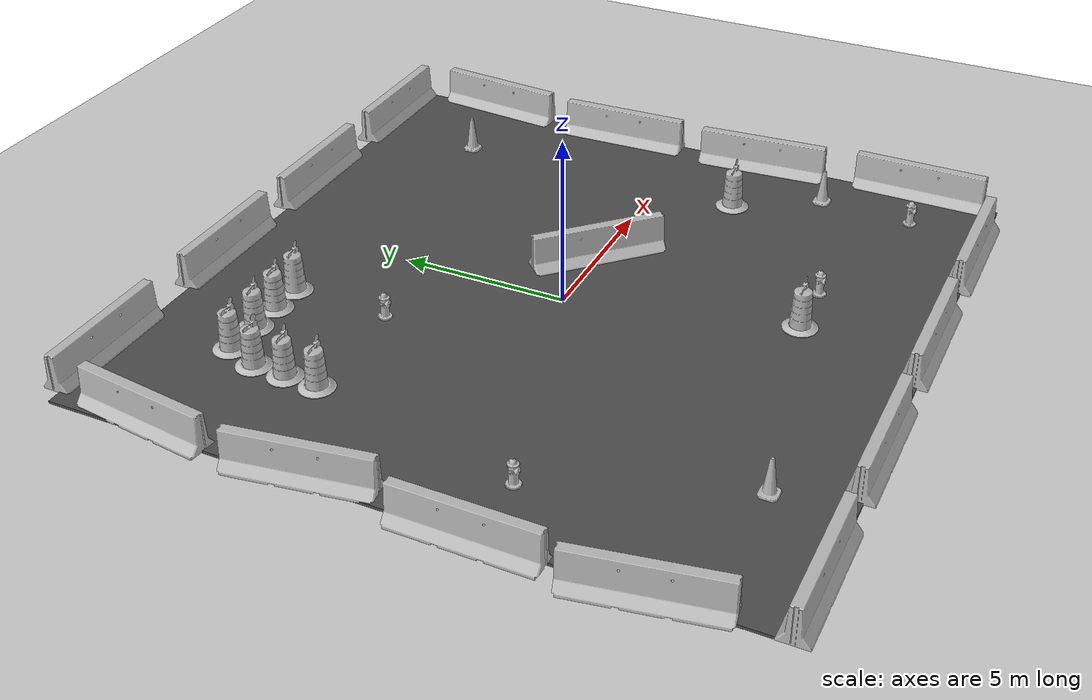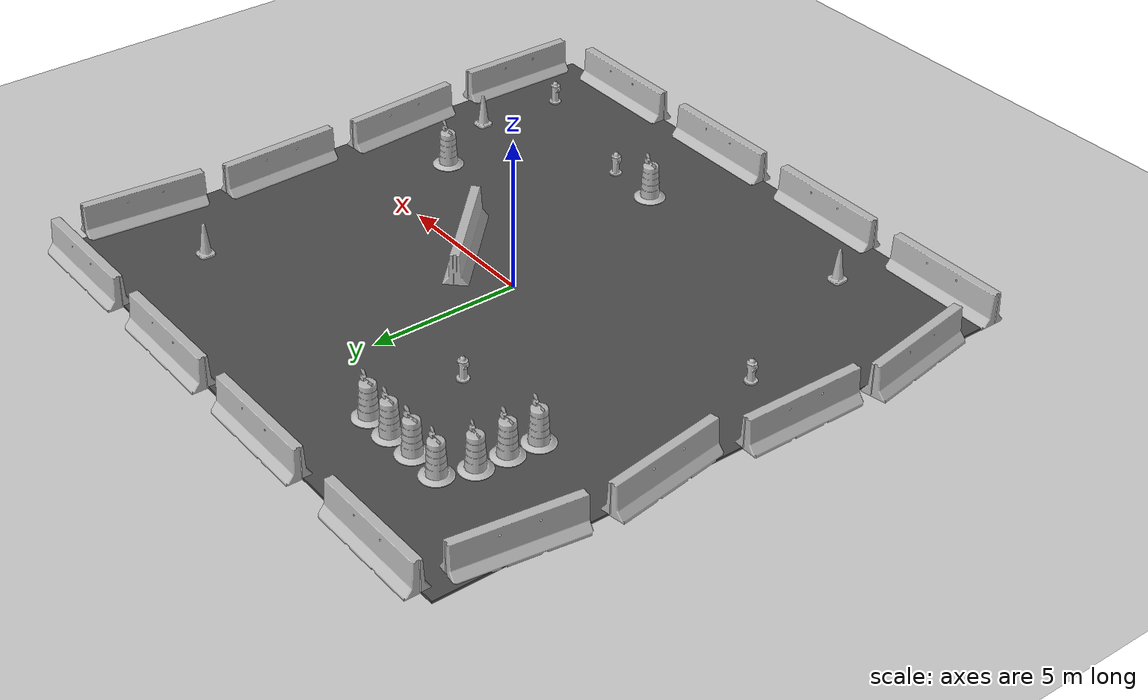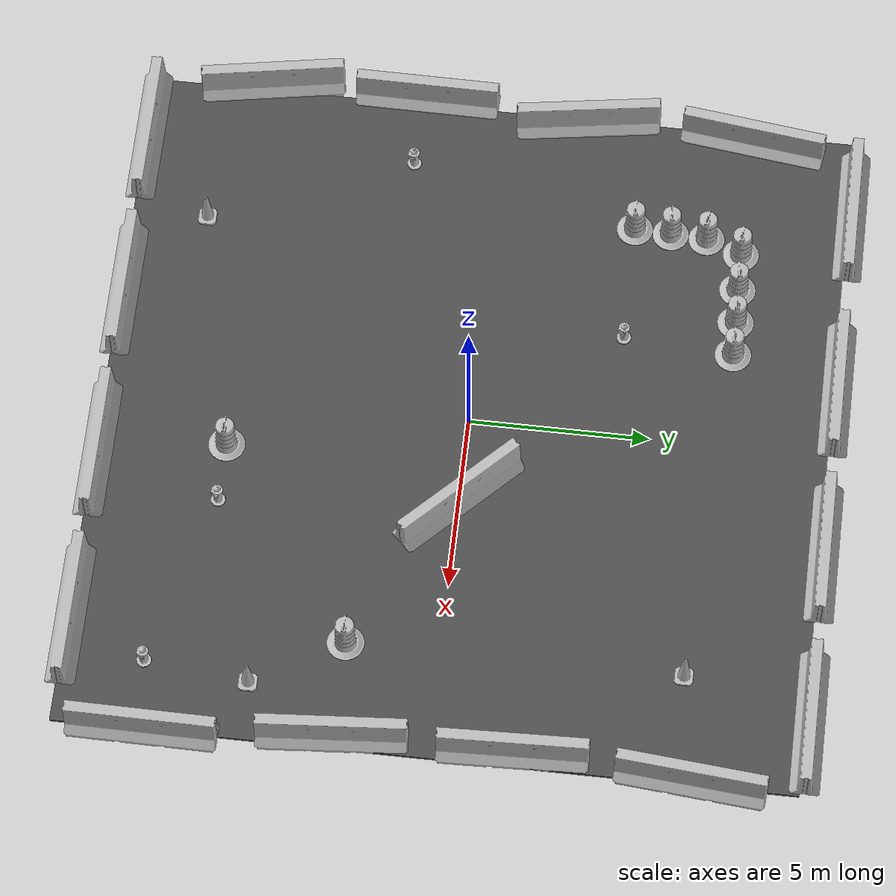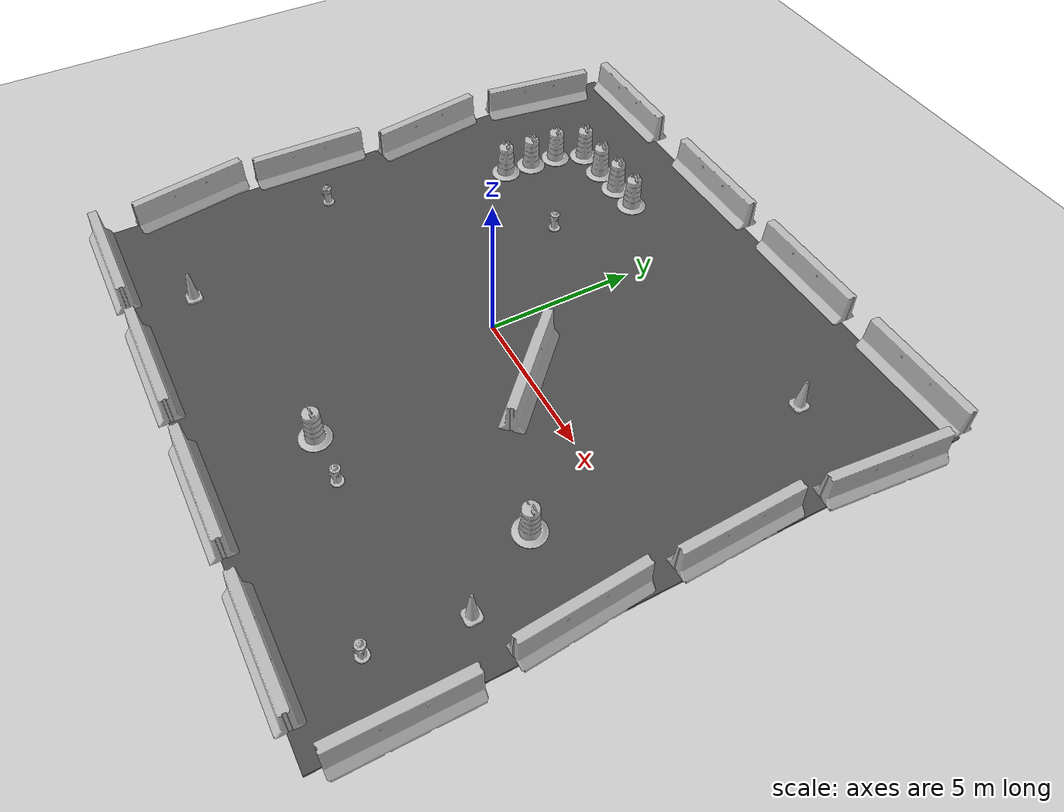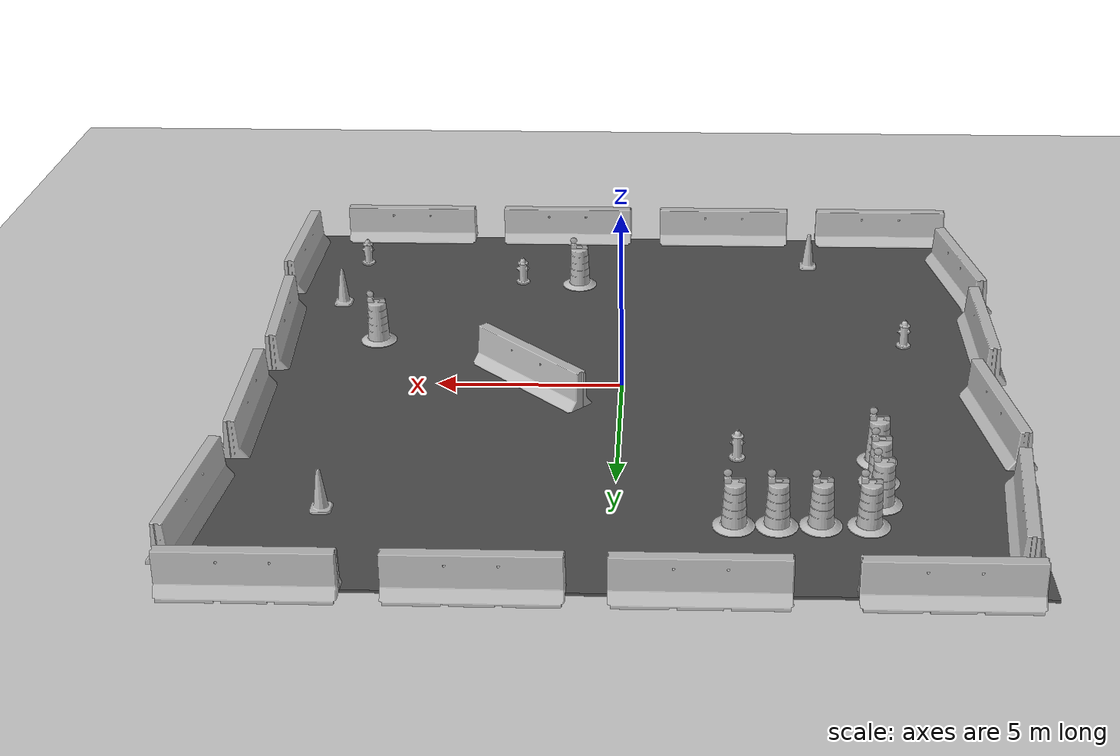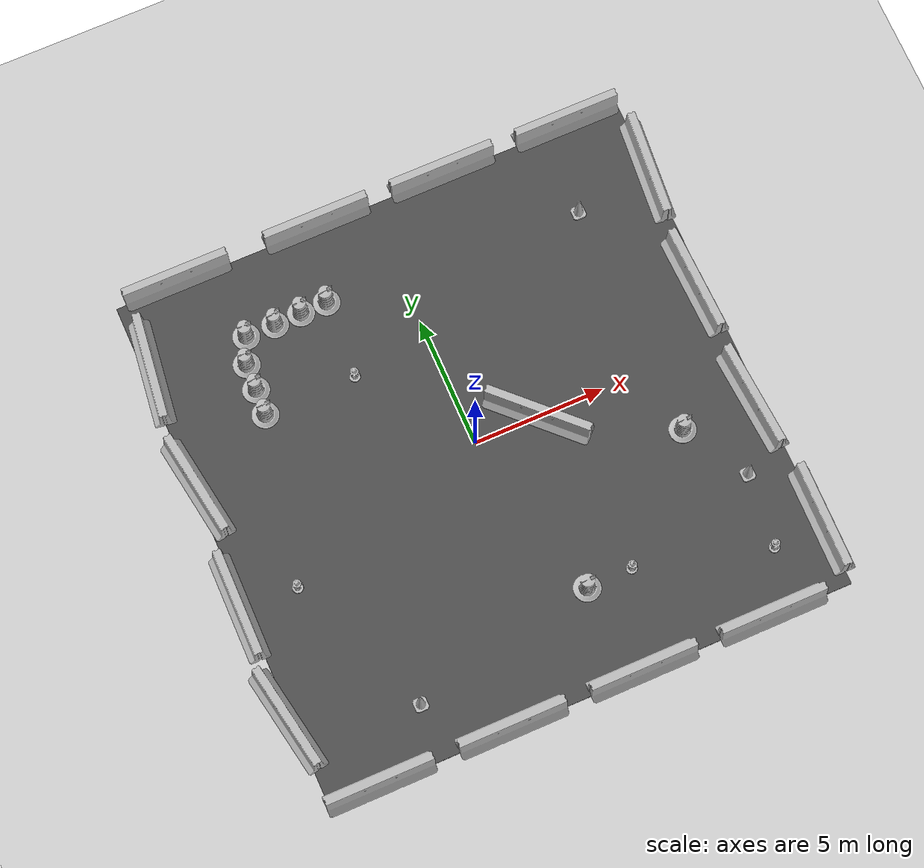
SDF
<sdf version="1.6">
 <world name="default">
  <light name="sun" type="directional">
   <pose>0 0 10 0 -0 0</pose>
   <diffuse>0.8 0.8 0.8 1</diffuse>
   <specular>0.2 0.2 0.2 1</specular>
   <attenuation>
    <range>1000</range>
    <constant>0.9</constant>
    <linear>0.01</linear>
    <quadratic>0.001</quadratic>
   </attenuation>
   <direction>-0.5 0.1 -0.9</direction>
  </light>
  <model name="ground_plane">
   <static>1</static>
   <link name="link">
    <collision name="collision">
     <geometry><plane><normal>0 0 1</normal><size>100 100</size></plane></geometry>
     <surface><friction><ode><mu>100</mu><mu2>50</mu2></ode></friction></surface>
    </collision>
    <visual name="visual">
     <cast_shadows>0</cast_shadows>
     <geometry><plane><normal>0 0 1</normal><size>100 100</size></plane></geometry>
     <material>
      <script><uri>file://media/materials/scripts/gazebo.material</uri><name>Gazebo/Grey</name></script>
     </material>
    </visual>
    <velocity_decay><linear>0</linear><angular>0</angular></velocity_decay>
   </link>
  </model>
  <physics name="default_physics" default="0" type="ode">
   <max_step_size>0.004</max_step_size>
   <real_time_factor>1</real_time_factor>
   <real_time_update_rate>250</real_time_update_rate>
  </physics>
  <scene><ambient>0.4 0.4 0.4 1</ambient><background>0.7 0.7 0.7 1</background><shadows>1</shadows></scene>
  <model name="jersey_barrier">
   <static>1</static>
   <link name="link">
    <visual name="visual">
     <geometry><mesh><uri>model://jersey_barrier/meshes/jersey_barrier.dae</uri></mesh></geometry>
    </visual>
    <collision name="upright">
     <pose>0 0 0.5715 0 -0 0</pose>
     <geometry><box><size>4.06542 0.3063 1.143</size></box></geometry>
    </collision>
    <collision name="base">
     <pose>0 0 0.032258 0 -0 0</pose>
     <geometry><box><size>4.06542 0.8107 0.064516</size></box></geometry>
    </collision>
    <collision name="base2">
     <pose>0 0 0.1 0 -0 0</pose>
     <geometry><box><size>4.06542 0.65 0.1</size></box></geometry>
    </collision>
    <collision name="base3">
     <pose>0 0 0.2 0 -0 0</pose>
     <geometry><box><size>4.06542 0.5 0.1</size></box></geometry>
    </collision>
    <collision name="left-angle">
     <pose>0 -0.224 0.2401 0.9 -0 0</pose>
     <geometry><box><size>4.06542 0.5 0.064516</size></box></geometry>
    </collision>
    <collision name="right-angle">
     <pose>0 0.224 0.2401 -0.9 0 0</pose>
     <geometry><box><size>4.06542 0.5 0.064516</size></box></geometry>
    </collision>
    <velocity_decay><linear>0</linear><angular>0</angular></velocity_decay>
   </link>
   <pose>-8 -10 0 0 -0 0</pose>
  </model>
  <model name="jersey_barrier_0">
   <static>1</static>
   <link name="link">
    <visual name="visual">
     <geometry><mesh><uri>model://jersey_barrier/meshes/jersey_barrier.dae</uri></mesh></geometry>
    </visual>
    <collision name="upright">
     <pose>0 0 0.5715 0 -0 0</pose>
     <geometry><box><size>4.06542 0.3063 1.143</size></box></geometry>
    </collision>
    <collision name="base">
     <pose>0 0 0.032258 0 -0 0</pose>
     <geometry><box><size>4.06542 0.8107 0.064516</size></box></geometry>
    </collision>
    <collision name="base2">
     <pose>0 0 0.1 0 -0 0</pose>
     <geometry><box><size>4.06542 0.65 0.1</size></box></geometry>
    </collision>
    <collision name="base3">
     <pose>0 0 0.2 0 -0 0</pose>
     <geometry><box><size>4.06542 0.5 0.1</size></box></geometry>
    </collision>
    <collision name="left-angle">
     <pose>0 -0.224 0.2401 0.9 -0 0</pose>
     <geometry><box><size>4.06542 0.5 0.064516</size></box></geometry>
    </collision>
    <collision name="right-angle">
     <pose>0 0.224 0.2401 -0.9 0 0</pose>
     <geometry><box><size>4.06542 0.5 0.064516</size></box></geometry>
    </collision>
    <velocity_decay><linear>0</linear><angular>0</angular></velocity_decay>
   </link>
   <pose>-3 -10 0 0 -0 0</pose>
  </model>
  <model name="jersey_barrier_1">
   <static>1</static>
   <link name="link">
    <visual name="visual">
     <geometry><mesh><uri>model://jersey_barrier/meshes/jersey_barrier.dae</uri></mesh></geometry>
    </visual>
    <collision name="upright">
     <pose>0 0 0.5715 0 -0 0</pose>
     <geometry><box><size>4.06542 0.3063 1.143</size></box></geometry>
    </collision>
    <collision name="base">
     <pose>0 0 0.032258 0 -0 0</pose>
     <geometry><box><size>4.06542 0.8107 0.064516</size></box></geometry>
    </collision>
    <collision name="base2">
     <pose>0 0 0.1 0 -0 0</pose>
     <geometry><box><size>4.06542 0.65 0.1</size></box></geometry>
    </collision>
    <collision name="base3">
     <pose>0 0 0.2 0 -0 0</pose>
     <geometry><box><size>4.06542 0.5 0.1</size></box></geometry>
    </collision>
    <collision name="left-angle">
     <pose>0 -0.224 0.2401 0.9 -0 0</pose>
     <geometry><box><size>4.06542 0.5 0.064516</size></box></geometry>
    </collision>
    <collision name="right-angle">
     <pose>0 0.224 0.2401 -0.9 0 0</pose>
     <geometry><box><size>4.06542 0.5 0.064516</size></box></geometry>
    </collision>
    <velocity_decay><linear>0</linear><angular>0</angular></velocity_decay>
   </link>
   <pose>2 -10 0 0 -0 0</pose>
  </model>
  <model name="jersey_barrier_2">
   <static>1</static>
   <link name="link">
    <visual name="visual">
     <geometry><mesh><uri>model://jersey_barrier/meshes/jersey_barrier.dae</uri></mesh></geometry>
    </visual>
    <collision name="upright">
     <pose>0 0 0.5715 0 -0 0</pose>
     <geometry><box><size>4.06542 0.3063 1.143</size></box></geometry>
    </collision>
    <collision name="base">
     <pose>0 0 0.032258 0 -0 0</pose>
     <geometry><box><size>4.06542 0.8107 0.064516</size></box></geometry>
    </collision>
    <collision name="base2">
     <pose>0 0 0.1 0 -0 0</pose>
     <geometry><box><size>4.06542 0.65 0.1</size></box></geometry>
    </collision>
    <collision name="base3">
     <pose>0 0 0.2 0 -0 0</pose>
     <geometry><box><size>4.06542 0.5 0.1</size></box></geometry>
    </collision>
    <collision name="left-angle">
     <pose>0 -0.224 0.2401 0.9 -0 0</pose>
     <geometry><box><size>4.06542 0.5 0.064516</size></box></geometry>
    </collision>
    <collision name="right-angle">
     <pose>0 0.224 0.2401 -0.9 0 0</pose>
     <geometry><box><size>4.06542 0.5 0.064516</size></box></geometry>
    </collision>
    <velocity_decay><linear>0</linear><angular>0</angular></velocity_decay>
   </link>
   <pose>7 -10 0 0 -0 0</pose>
  </model>
  <model name="jersey_barrier_3">
   <static>1</static>
   <link name="link">
    <visual name="visual">
     <geometry><mesh><uri>model://jersey_barrier/meshes/jersey_barrier.dae</uri></mesh></geometry>
    </visual>
    <collision name="upright">
     <pose>0 0 0.5715 0 -0 0</pose>
     <geometry><box><size>4.06542 0.3063 1.143</size></box></geometry>
    </collision>
    <collision name="base">
     <pose>0 0 0.032258 0 -0 0</pose>
     <geometry><box><size>4.06542 0.8107 0.064516</size></box></geometry>
    </collision>
    <collision name="base2">
     <pose>0 0 0.1 0 -0 0</pose>
     <geometry><box><size>4.06542 0.65 0.1</size></box></geometry>
    </collision>
    <collision name="base3">
     <pose>0 0 0.2 0 -0 0</pose>
     <geometry><box><size>4.06542 0.5 0.1</size></box></geometry>
    </collision>
    <collision name="left-angle">
     <pose>0 -0.224 0.2401 0.9 -0 0</pose>
     <geometry><box><size>4.06542 0.5 0.064516</size></box></geometry>
    </collision>
    <collision name="right-angle">
     <pose>0 0.224 0.2401 -0.9 0 0</pose>
     <geometry><box><size>4.06542 0.5 0.064516</size></box></geometry>
    </collision>
    <velocity_decay><linear>0</linear><angular>0</angular></velocity_decay>
   </link>
   <pose>-7.50675 10 0 0 -0 0</pose>
  </model>
  <model name="jersey_barrier_4">
   <static>1</static>
   <link name="link">
    <visual name="visual">
     <geometry><mesh><uri>model://jersey_barrier/meshes/jersey_barrier.dae</uri></mesh></geometry>
    </visual>
    <collision name="upright">
     <pose>0 0 0.5715 0 -0 0</pose>
     <geometry><box><size>4.06542 0.3063 1.143</size></box></geometry>
    </collision>
    <collision name="base">
     <pose>0 0 0.032258 0 -0 0</pose>
     <geometry><box><size>4.06542 0.8107 0.064516</size></box></geometry>
    </collision>
    <collision name="base2">
     <pose>0 0 0.1 0 -0 0</pose>
     <geometry><box><size>4.06542 0.65 0.1</size></box></geometry>
    </collision>
    <collision name="base3">
     <pose>0 0 0.2 0 -0 0</pose>
     <geometry><box><size>4.06542 0.5 0.1</size></box></geometry>
    </collision>
    <collision name="left-angle">
     <pose>0 -0.224 0.2401 0.9 -0 0</pose>
     <geometry><box><size>4.06542 0.5 0.064516</size></box></geometry>
    </collision>
    <collision name="right-angle">
     <pose>0 0.224 0.2401 -0.9 0 0</pose>
     <geometry><box><size>4.06542 0.5 0.064516</size></box></geometry>
    </collision>
    <velocity_decay><linear>0</linear><angular>0</angular></velocity_decay>
   </link>
   <pose>-2 10 0 0 -0 0</pose>
  </model>
  <model name="jersey_barrier_5">
   <static>1</static>
   <link name="link">
    <visual name="visual">
     <geometry><mesh><uri>model://jersey_barrier/meshes/jersey_barrier.dae</uri></mesh></geometry>
    </visual>
    <collision name="upright">
     <pose>0 0 0.5715 0 -0 0</pose>
     <geometry><box><size>4.06542 0.3063 1.143</size></box></geometry>
    </collision>
    <collision name="base">
     <pose>0 0 0.032258 0 -0 0</pose>
     <geometry><box><size>4.06542 0.8107 0.064516</size></box></geometry>
    </collision>
    <collision name="base2">
     <pose>0 0 0.1 0 -0 0</pose>
     <geometry><box><size>4.06542 0.65 0.1</size></box></geometry>
    </collision>
    <collision name="base3">
     <pose>0 0 0.2 0 -0 0</pose>
     <geometry><box><size>4.06542 0.5 0.1</size></box></geometry>
    </collision>
    <collision name="left-angle">
     <pose>0 -0.224 0.2401 0.9 -0 0</pose>
     <geometry><box><size>4.06542 0.5 0.064516</size></box></geometry>
    </collision>
    <collision name="right-angle">
     <pose>0 0.224 0.2401 -0.9 0 0</pose>
     <geometry><box><size>4.06542 0.5 0.064516</size></box></geometry>
    </collision>
    <velocity_decay><linear>0</linear><angular>0</angular></velocity_decay>
   </link>
   <pose>3 10 0 0 -0 0</pose>
  </model>
  <model name="jersey_barrier_6">
   <static>1</static>
   <link name="link">
    <visual name="visual">
     <geometry><mesh><uri>model://jersey_barrier/meshes/jersey_barrier.dae</uri></mesh></geometry>
    </visual>
    <collision name="upright">
     <pose>0 0 0.5715 0 -0 0</pose>
     <geometry><box><size>4.06542 0.3063 1.143</size></box></geometry>
    </collision>
    <collision name="base">
     <pose>0 0 0.032258 0 -0 0</pose>
     <geometry><box><size>4.06542 0.8107 0.064516</size></box></geometry>
    </collision>
    <collision name="base2">
     <pose>0 0 0.1 0 -0 0</pose>
     <geometry><box><size>4.06542 0.65 0.1</size></box></geometry>
    </collision>
    <collision name="base3">
     <pose>0 0 0.2 0 -0 0</pose>
     <geometry><box><size>4.06542 0.5 0.1</size></box></geometry>
    </collision>
    <collision name="left-angle">
     <pose>0 -0.224 0.2401 0.9 -0 0</pose>
     <geometry><box><size>4.06542 0.5 0.064516</size></box></geometry>
    </collision>
    <collision name="right-angle">
     <pose>0 0.224 0.2401 -0.9 0 0</pose>
     <geometry><box><size>4.06542 0.5 0.064516</size></box></geometry>
    </collision>
    <velocity_decay><linear>0</linear><angular>0</angular></velocity_decay>
   </link>
   <pose>8 10 0 0 -0 0</pose>
  </model>
  <model name="jersey_barrier_7">
   <static>1</static>
   <link name="link">
    <visual name="visual">
     <geometry><mesh><uri>model://jersey_barrier/meshes/jersey_barrier.dae</uri></mesh></geometry>
    </visual>
    <collision name="upright">
     <pose>0 0 0.5715 0 -0 0</pose>
     <geometry><box><size>4.06542 0.3063 1.143</size></box></geometry>
    </collision>
    <collision name="base">
     <pose>0 0 0.032258 0 -0 0</pose>
     <geometry><box><size>4.06542 0.8107 0.064516</size></box></geometry>
    </collision>
    <collision name="base2">
     <pose>0 0 0.1 0 -0 0</pose>
     <geometry><box><size>4.06542 0.65 0.1</size></box></geometry>
    </collision>
    <collision name="base3">
     <pose>0 0 0.2 0 -0 0</pose>
     <geometry><box><size>4.06542 0.5 0.1</size></box></geometry>
    </collision>
    <collision name="left-angle">
     <pose>0 -0.224 0.2401 0.9 -0 0</pose>
     <geometry><box><size>4.06542 0.5 0.064516</size></box></geometry>
    </collision>
    <collision name="right-angle">
     <pose>0 0.224 0.2401 -0.9 0 0</pose>
     <geometry><box><size>4.06542 0.5 0.064516</size></box></geometry>
    </collision>
    <velocity_decay><linear>0</linear><angular>0</angular></velocity_decay>
   </link>
   <pose>9.74902 -2.57759 0 0 -0 1.64</pose>
  </model>
  <model name="jersey_barrier_8">
   <static>1</static>
   <link name="link">
    <visual name="visual">
     <geometry><mesh><uri>model://jersey_barrier/meshes/jersey_barrier.dae</uri></mesh></geometry>
    </visual>
    <collision name="upright">
     <pose>0 0 0.5715 0 -0 0</pose>
     <geometry><box><size>4.06542 0.3063 1.143</size></box></geometry>
    </collision>
    <collision name="base">
     <pose>0 0 0.032258 0 -0 0</pose>
     <geometry><box><size>4.06542 0.8107 0.064516</size></box></geometry>
    </collision>
    <collision name="base2">
     <pose>0 0 0.1 0 -0 0</pose>
     <geometry><box><size>4.06542 0.65 0.1</size></box></geometry>
    </collision>
    <collision name="base3">
     <pose>0 0 0.2 0 -0 0</pose>
     <geometry><box><size>4.06542 0.5 0.1</size></box></geometry>
    </collision>
    <collision name="left-angle">
     <pose>0 -0.224 0.2401 0.9 -0 0</pose>
     <geometry><box><size>4.06542 0.5 0.064516</size></box></geometry>
    </collision>
    <collision name="right-angle">
     <pose>0 0.224 0.2401 -0.9 0 0</pose>
     <geometry><box><size>4.06542 0.5 0.064516</size></box></geometry>
    </collision>
    <velocity_decay><linear>0</linear><angular>0</angular></velocity_decay>
   </link>
   <pose>9.70141 2.24369 0 0 -0 1.6</pose>
  </model>
  <model name="jersey_barrier_9">
   <static>1</static>
   <link name="link">
    <visual name="visual">
     <geometry><mesh><uri>model://jersey_barrier/meshes/jersey_barrier.dae</uri></mesh></geometry>
    </visual>
    <collision name="upright">
     <pose>0 0 0.5715 0 -0 0</pose>
     <geometry><box><size>4.06542 0.3063 1.143</size></box></geometry>
    </collision>
    <collision name="base">
     <pose>0 0 0.032258 0 -0 0</pose>
     <geometry><box><size>4.06542 0.8107 0.064516</size></box></geometry>
    </collision>
    <collision name="base2">
     <pose>0 0 0.1 0 -0 0</pose>
     <geometry><box><size>4.06542 0.65 0.1</size></box></geometry>
    </collision>
    <collision name="base3">
     <pose>0 0 0.2 0 -0 0</pose>
     <geometry><box><size>4.06542 0.5 0.1</size></box></geometry>
    </collision>
    <collision name="left-angle">
     <pose>0 -0.224 0.2401 0.9 -0 0</pose>
     <geometry><box><size>4.06542 0.5 0.064516</size></box></geometry>
    </collision>
    <collision name="right-angle">
     <pose>0 0.224 0.2401 -0.9 0 0</pose>
     <geometry><box><size>4.06542 0.5 0.064516</size></box></geometry>
    </collision>
    <velocity_decay><linear>0</linear><angular>0</angular></velocity_decay>
   </link>
   <pose>-10.0607 -6.69856 0 0 0 -1.4</pose>
  </model>
  <model name="jersey_barrier_10">
   <static>1</static>
   <link name="link">
    <visual name="visual">
     <geometry><mesh><uri>model://jersey_barrier/meshes/jersey_barrier.dae</uri></mesh></geometry>
    </visual>
    <collision name="upright">
     <pose>0 0 0.5715 0 -0 0</pose>
     <geometry><box><size>4.06542 0.3063 1.143</size></box></geometry>
    </collision>
    <collision name="base">
     <pose>0 0 0.032258 0 -0 0</pose>
     <geometry><box><size>4.06542 0.8107 0.064516</size></box></geometry>
    </collision>
    <collision name="base2">
     <pose>0 0 0.1 0 -0 0</pose>
     <geometry><box><size>4.06542 0.65 0.1</size></box></geometry>
    </collision>
    <collision name="base3">
     <pose>0 0 0.2 0 -0 0</pose>
     <geometry><box><size>4.06542 0.5 0.1</size></box></geometry>
    </collision>
    <collision name="left-angle">
     <pose>0 -0.224 0.2401 0.9 -0 0</pose>
     <geometry><box><size>4.06542 0.5 0.064516</size></box></geometry>
    </collision>
    <collision name="right-angle">
     <pose>0 0.224 0.2401 -0.9 0 0</pose>
     <geometry><box><size>4.06542 0.5 0.064516</size></box></geometry>
    </collision>
    <velocity_decay><linear>0</linear><angular>0</angular></velocity_decay>
   </link>
   <pose>-10.0774 -2.27159 0 0 -0 1.56</pose>
  </model>
  <model name="jersey_barrier_11">
   <static>1</static>
   <link name="link">
    <visual name="visual">
     <geometry><mesh><uri>model://jersey_barrier/meshes/jersey_barrier.dae</uri></mesh></geometry>
    </visual>
    <collision name="upright">
     <pose>0 0 0.5715 0 -0 0</pose>
     <geometry><box><size>4.06542 0.3063 1.143</size></box></geometry>
    </collision>
    <collision name="base">
     <pose>0 0 0.032258 0 -0 0</pose>
     <geometry><box><size>4.06542 0.8107 0.064516</size></box></geometry>
    </collision>
    <collision name="base2">
     <pose>0 0 0.1 0 -0 0</pose>
     <geometry><box><size>4.06542 0.65 0.1</size></box></geometry>
    </collision>
    <collision name="base3">
     <pose>0 0 0.2 0 -0 0</pose>
     <geometry><box><size>4.06542 0.5 0.1</size></box></geometry>
    </collision>
    <collision name="left-angle">
     <pose>0 -0.224 0.2401 0.9 -0 0</pose>
     <geometry><box><size>4.06542 0.5 0.064516</size></box></geometry>
    </collision>
    <collision name="right-angle">
     <pose>0 0.224 0.2401 -0.9 0 0</pose>
     <geometry><box><size>4.06542 0.5 0.064516</size></box></geometry>
    </collision>
    <velocity_decay><linear>0</linear><angular>0</angular></velocity_decay>
   </link>
   <pose>-9.77013 2.34791 0 0 -0 1.72</pose>
  </model>
  <model name="jersey_barrier_12">
   <static>1</static>
   <link name="link">
    <visual name="visual">
     <geometry><mesh><uri>model://jersey_barrier/meshes/jersey_barrier.dae</uri></mesh></geometry>
    </visual>
    <collision name="upright">
     <pose>0 0 0.5715 0 -0 0</pose>
     <geometry><box><size>4.06542 0.3063 1.143</size></box></geometry>
    </collision>
    <collision name="base">
     <pose>0 0 0.032258 0 -0 0</pose>
     <geometry><box><size>4.06542 0.8107 0.064516</size></box></geometry>
    </collision>
    <collision name="base2">
     <pose>0 0 0.1 0 -0 0</pose>
     <geometry><box><size>4.06542 0.65 0.1</size></box></geometry>
    </collision>
    <collision name="base3">
     <pose>0 0 0.2 0 -0 0</pose>
     <geometry><box><size>4.06542 0.5 0.1</size></box></geometry>
    </collision>
    <collision name="left-angle">
     <pose>0 -0.224 0.2401 0.9 -0 0</pose>
     <geometry><box><size>4.06542 0.5 0.064516</size></box></geometry>
    </collision>
    <collision name="right-angle">
     <pose>0 0.224 0.2401 -0.9 0 0</pose>
     <geometry><box><size>4.06542 0.5 0.064516</size></box></geometry>
    </collision>
    <velocity_decay><linear>0</linear><angular>0</angular></velocity_decay>
   </link>
   <pose>10.0879 -7.62159 0 0 -0 1.56</pose>
  </model>
  <model name="jersey_barrier_13">
   <static>1</static>
   <link name="link">
    <visual name="visual">
     <geometry><mesh><uri>model://jersey_barrier/meshes/jersey_barrier.dae</uri></mesh></geometry>
    </visual>
    <collision name="upright">
     <pose>0 0 0.5715 0 -0 0</pose>
     <geometry><box><size>4.06542 0.3063 1.143</size></box></geometry>
    </collision>
    <collision name="base">
     <pose>0 0 0.032258 0 -0 0</pose>
     <geometry><box><size>4.06542 0.8107 0.064516</size></box></geometry>
    </collision>
    <collision name="base2">
     <pose>0 0 0.1 0 -0 0</pose>
     <geometry><box><size>4.06542 0.65 0.1</size></box></geometry>
    </collision>
    <collision name="base3">
     <pose>0 0 0.2 0 -0 0</pose>
     <geometry><box><size>4.06542 0.5 0.1</size></box></geometry>
    </collision>
    <collision name="left-angle">
     <pose>0 -0.224 0.2401 0.9 -0 0</pose>
     <geometry><box><size>4.06542 0.5 0.064516</size></box></geometry>
    </collision>
    <collision name="right-angle">
     <pose>0 0.224 0.2401 -0.9 0 0</pose>
     <geometry><box><size>4.06542 0.5 0.064516</size></box></geometry>
    </collision>
    <velocity_decay><linear>0</linear><angular>0</angular></velocity_decay>
   </link>
   <pose>10 7 0 0 -0 1.48</pose>
  </model>
  <model name="jersey_barrier_14">
   <static>1</static>
   <link name="link">
    <visual name="visual">
     <geometry><mesh><uri>model://jersey_barrier/meshes/jersey_barrier.dae</uri></mesh></geometry>
    </visual>
    <collision name="upright">
     <pose>0 0 0.5715 0 -0 0</pose>
     <geometry><box><size>4.06542 0.3063 1.143</size></box></geometry>
    </collision>
    <collision name="base">
     <pose>0 0 0.032258 0 -0 0</pose>
     <geometry><box><size>4.06542 0.8107 0.064516</size></box></geometry>
    </collision>
    <collision name="base2">
     <pose>0 0 0.1 0 -0 0</pose>
     <geometry><box><size>4.06542 0.65 0.1</size></box></geometry>
    </collision>
    <collision name="base3">
     <pose>0 0 0.2 0 -0 0</pose>
     <geometry><box><size>4.06542 0.5 0.1</size></box></geometry>
    </collision>
    <collision name="left-angle">
     <pose>0 -0.224 0.2401 0.9 -0 0</pose>
     <geometry><box><size>4.06542 0.5 0.064516</size></box></geometry>
    </collision>
    <collision name="right-angle">
     <pose>0 0.224 0.2401 -0.9 0 0</pose>
     <geometry><box><size>4.06542 0.5 0.064516</size></box></geometry>
    </collision>
    <velocity_decay><linear>0</linear><angular>0</angular></velocity_decay>
   </link>
   <pose>-9.64482 7.05946 0 0 -0 1.44</pose>
  </model>
  <model name="fire_hydrant">
   <static>1</static>
   <link name="link">
    <collision name="collision">
     <geometry><mesh><uri>model://fire_hydrant/meshes/fire_hydrant.dae</uri></mesh></geometry>
    </collision>
    <visual name="visual">
     <geometry><mesh><uri>model://fire_hydrant/meshes/fire_hydrant.dae</uri></mesh></geometry>
    </visual>
    <velocity_decay><linear>0</linear><angular>0</angular></velocity_decay>
   </link>
   <pose>3.18024 -6.51118 0 0 -0 0</pose>
  </model>
  <model name="fire_hydrant_0">
   <static>1</static>
   <link name="link">
    <collision name="collision">
     <geometry><mesh><uri>model://fire_hydrant/meshes/fire_hydrant.dae</uri></mesh></geometry>
    </collision>
    <visual name="visual">
     <geometry><mesh><uri>model://fire_hydrant/meshes/fire_hydrant.dae</uri></mesh></geometry>
    </visual>
    <velocity_decay><linear>0</linear><angular>0</angular></velocity_decay>
   </link>
   <pose>-3 4 0 0 -0 0</pose>
  </model>
  <model name="fire_hydrant_1">
   <static>1</static>
   <link name="link">
    <collision name="collision">
     <geometry><mesh><uri>model://fire_hydrant/meshes/fire_hydrant.dae</uri></mesh></geometry>
    </collision>
    <visual name="visual">
     <geometry><mesh><uri>model://fire_hydrant/meshes/fire_hydrant.dae</uri></mesh></geometry>
    </visual>
    <velocity_decay><linear>0</linear><angular>0</angular></velocity_decay>
   </link>
   <pose>-7.90686 -2.41363 0 0 -0 0</pose>
  </model>
  <model name="jersey_barrier_15">
   <static>1</static>
   <link name="link">
    <visual name="visual">
     <geometry><mesh><uri>model://jersey_barrier/meshes/jersey_barrier.dae</uri></mesh></geometry>
    </visual>
    <collision name="upright">
     <pose>0 0 0.5715 0 -0 0</pose>
     <geometry><box><size>4.06542 0.3063 1.143</size></box></geometry>
    </collision>
    <collision name="base">
     <pose>0 0 0.032258 0 -0 0</pose>
     <geometry><box><size>4.06542 0.8107 0.064516</size></box></geometry>
    </collision>
    <collision name="base2">
     <pose>0 0 0.1 0 -0 0</pose>
     <geometry><box><size>4.06542 0.65 0.1</size></box></geometry>
    </collision>
    <collision name="base3">
     <pose>0 0 0.2 0 -0 0</pose>
     <geometry><box><size>4.06542 0.5 0.1</size></box></geometry>
    </collision>
    <collision name="left-angle">
     <pose>0 -0.224 0.2401 0.9 -0 0</pose>
     <geometry><box><size>4.06542 0.5 0.064516</size></box></geometry>
    </collision>
    <collision name="right-angle">
     <pose>0 0.224 0.2401 -0.9 0 0</pose>
     <geometry><box><size>4.06542 0.5 0.064516</size></box></geometry>
    </collision>
    <velocity_decay><linear>0</linear><angular>0</angular></velocity_decay>
   </link>
   <pose>2.45495 0 0 0 -0 2.36</pose>
  </model>
  <model name="Construction Cone">
   <link name="link">
    <collision name="collision">
     <geometry>
      <mesh><scale>10 10 10</scale><uri>model://construction_cone/meshes/construction_cone.dae</uri></mesh>
     </geometry>
    </collision>
    <visual name="visual">
     <geometry>
      <mesh><scale>10 10 10</scale><uri>model://construction_cone/meshes/construction_cone.dae</uri></mesh>
     </geometry>
    </visual>
    <velocity_decay><linear>0</linear><angular>0</angular></velocity_decay>
    <inertial>
     <inertia><ixx>1</ixx><ixy>0</ixy><ixz>0</ixz><iyy>1</iyy><iyz>0</iyz><izz>1</izz></inertia>
     <mass>1</mass>
    </inertial>
   </link>
   <pose>-5.59121 -8 0.05 0 -1e-06 0</pose>
   <static>0</static>
  </model>
  <model name="Construction Barrel">
   <link name="link">
    <inertial>
     <pose>0 0 0.4 0 -0 0</pose>
     <mass>500</mass>
     <inertia><ixx>51.2096</ixx><iyy>51.2096</iyy><izz>25</izz><ixy>0</ixy><ixz>0</ixz><iyz>0</iyz></inertia>
    </inertial>
    <collision name="collision">
     <geometry><mesh><uri>model://construction_barrel/meshes/construction_barrel.dae</uri></mesh></geometry>
    </collision>
    <visual name="visual">
     <geometry><mesh><uri>model://construction_barrel/meshes/construction_barrel.dae</uri></mesh></geometry>
    </visual>
    <velocity_decay><linear>0</linear><angular>0</angular></velocity_decay>
   </link>
   <pose>7.00006 -2.54634 0.049884 0.000469 -9e-06 0.000389</pose>
   <static>0</static>
  </model>
  <model name="Construction Cone_0">
   <link name="link">
    <collision name="collision">
     <geometry>
      <mesh><scale>10 10 10</scale><uri>model://construction_cone/meshes/construction_cone.dae</uri></mesh>
     </geometry>
    </collision>
    <visual name="visual">
     <geometry>
      <mesh><scale>10 10 10</scale><uri>model://construction_cone/meshes/construction_cone.dae</uri></mesh>
     </geometry>
    </visual>
    <velocity_decay><linear>0</linear><angular>0</angular></velocity_decay>
    <inertial>
     <inertia><ixx>1</ixx><ixy>0</ixy><ixz>0</ixz><iyy>1</iyy><iyz>0</iyz><izz>1</izz></inertia>
     <mass>1</mass>
    </inertial>
   </link>
   <pose>6.99685 6.55732 0.049102 3e-06 -1e-05 -0.007012</pose>
   <static>0</static>
  </model>
  <model name="Construction Barrel_0">
   <link name="link">
    <inertial>
     <pose>0 0 0.4 0 -0 0</pose>
     <mass>500</mass>
     <inertia><ixx>51.2096</ixx><iyy>51.2096</iyy><izz>25</izz><ixy>0</ixy><ixz>0</ixz><iyz>0</iyz></inertia>
    </inertial>
    <collision name="collision">
     <geometry><mesh><uri>model://construction_barrel/meshes/construction_barrel.dae</uri></mesh></geometry>
    </collision>
    <visual name="visual">
     <geometry><mesh><uri>model://construction_barrel/meshes/construction_barrel.dae</uri></mesh></geometry>
    </visual>
    <velocity_decay><linear>0</linear><angular>0</angular></velocity_decay>
   </link>
   <pose>1.45178 -6.51127 0.049917 -0.000164 -0.000339 2.6e-05</pose>
   <static>0</static>
  </model>
  <model name="asphalt_plane">
   <static>1</static>
   <link name="link">
    <collision name="collision"><geometry><box><size>20 20 0.1</size></box></geometry></collision>
    <visual name="visual">
     <cast_shadows>0</cast_shadows>
     <geometry><box><size>20 20 0.1</size></box></geometry>
     <material>
      <script>
       <uri>model://asphalt_plane/materials/scripts</uri>
       <uri>model://asphalt_plane/materials/textures</uri>
       <name>vrc/asphalt</name>
      </script>
     </material>
    </visual>
    <velocity_decay><linear>0</linear><angular>0</angular></velocity_decay>
   </link>
   <pose>0.076733 -0.110379 0 0 -0 0</pose>
  </model>
  <model name="Construction Barrel_1">
   <link name="link">
    <inertial>
     <pose>0 0 0.4 0 -0 0</pose>
     <mass>500</mass>
     <inertia><ixx>51.2096</ixx><iyy>51.2096</iyy><izz>25</izz><ixy>0</ixy><ixz>0</ixz><iyz>0</iyz></inertia>
    </inertial>
    <collision name="collision">
     <geometry><mesh><uri>model://construction_barrel/meshes/construction_barrel.dae</uri></mesh></geometry>
    </collision>
    <visual name="visual">
     <geometry><mesh><uri>model://construction_barrel/meshes/construction_barrel.dae</uri></mesh></geometry>
    </visual>
    <velocity_decay><linear>0</linear><angular>0</angular></velocity_decay>
   </link>
   <pose>-6.5048 3.98262 0.049902 0.000404 9.2e-05 -0.009605</pose>
   <static>0</static>
  </model>
  <model name="Construction Barrel_2">
   <link name="link">
    <inertial>
     <pose>0 0 0.4 0 -0 0</pose>
     <mass>500</mass>
     <inertia><ixx>51.2096</ixx><iyy>51.2096</iyy><izz>25</izz><ixy>0</ixy><ixz>0</ixz><iyz>0</iyz></inertia>
    </inertial>
    <collision name="collision">
     <geometry><mesh><uri>model://construction_barrel/meshes/construction_barrel.dae</uri></mesh></geometry>
    </collision>
    <visual name="visual">
     <geometry><mesh><uri>model://construction_barrel/meshes/construction_barrel.dae</uri></mesh></geometry>
    </visual>
    <velocity_decay><linear>0</linear><angular>0</angular></velocity_decay>
   </link>
   <pose>-6.45065 4.9964 0.04989 -0.000217 -0.000399 0.064971</pose>
   <static>0</static>
  </model>
  <model name="Construction Barrel_3">
   <link name="link">
    <inertial>
     <pose>0 0 0.4 0 -0 0</pose>
     <mass>500</mass>
     <inertia><ixx>51.2096</ixx><iyy>51.2096</iyy><izz>25</izz><ixy>0</ixy><ixz>0</ixz><iyz>0</iyz></inertia>
    </inertial>
    <collision name="collision">
     <geometry><mesh><uri>model://construction_barrel/meshes/construction_barrel.dae</uri></mesh></geometry>
    </collision>
    <visual name="visual">
     <geometry><mesh><uri>model://construction_barrel/meshes/construction_barrel.dae</uri></mesh></geometry>
    </visual>
    <velocity_decay><linear>0</linear><angular>0</angular></velocity_decay>
   </link>
   <pose>-6.40172 6.01112 0.049895 -0.000102 -0.000387 -0.120724</pose>
   <static>0</static>
  </model>
  <model name="Construction Barrel_4">
   <link name="link">
    <inertial>
     <pose>0 0 0.4 0 -0 0</pose>
     <mass>500</mass>
     <inertia><ixx>51.2096</ixx><iyy>51.2096</iyy><izz>25</izz><ixy>0</ixy><ixz>0</ixz><iyz>0</iyz></inertia>
    </inertial>
    <collision name="collision">
     <geometry><mesh><uri>model://construction_barrel/meshes/construction_barrel.dae</uri></mesh></geometry>
    </collision>
    <visual name="visual">
     <geometry><mesh><uri>model://construction_barrel/meshes/construction_barrel.dae</uri></mesh></geometry>
    </visual>
    <velocity_decay><linear>0</linear><angular>0</angular></velocity_decay>
   </link>
   <pose>-6.00632 7.00881 0.049883 0.00044 0.000119 -0.049564</pose>
   <static>0</static>
  </model>
  <model name="Construction Barrel_5">
   <link name="link">
    <inertial>
     <pose>0 0 0.4 0 -0 0</pose>
     <mass>500</mass>
     <inertia><ixx>51.2096</ixx><iyy>51.2096</iyy><izz>25</izz><ixy>0</ixy><ixz>0</ixz><iyz>0</iyz></inertia>
    </inertial>
    <collision name="collision">
     <geometry><mesh><uri>model://construction_barrel/meshes/construction_barrel.dae</uri></mesh></geometry>
    </collision>
    <visual name="visual">
     <geometry><mesh><uri>model://construction_barrel/meshes/construction_barrel.dae</uri></mesh></geometry>
    </visual>
    <velocity_decay><linear>0</linear><angular>0</angular></velocity_decay>
   </link>
   <pose>-4.87564 7.00814 0.04992 -0.000157 -0.00033 0.146156</pose>
   <static>0</static>
  </model>
  <model name="Construction Barrel_6">
   <link name="link">
    <inertial>
     <pose>0 0 0.4 0 -0 0</pose>
     <mass>500</mass>
     <inertia><ixx>51.2096</ixx><iyy>51.2096</iyy><izz>25</izz><ixy>0</ixy><ixz>0</ixz><iyz>0</iyz></inertia>
    </inertial>
    <collision name="collision">
     <geometry><mesh><uri>model://construction_barrel/meshes/construction_barrel.dae</uri></mesh></geometry>
    </collision>
    <visual name="visual">
     <geometry><mesh><uri>model://construction_barrel/meshes/construction_barrel.dae</uri></mesh></geometry>
    </visual>
    <velocity_decay><linear>0</linear><angular>0</angular></velocity_decay>
   </link>
   <pose>-3.84217 7.0413 0.049904 -8.9e-05 -0.000398 0.026591</pose>
   <static>0</static>
  </model>
  <model name="Construction Barrel_7">
   <link name="link">
    <inertial>
     <pose>0 0 0.4 0 -0 0</pose>
     <mass>500</mass>
     <inertia><ixx>51.2096</ixx><iyy>51.2096</iyy><izz>25</izz><ixy>0</ixy><ixz>0</ixz><iyz>0</iyz></inertia>
    </inertial>
    <collision name="collision">
     <geometry><mesh><uri>model://construction_barrel/meshes/construction_barrel.dae</uri></mesh></geometry>
    </collision>
    <visual name="visual">
     <geometry><mesh><uri>model://construction_barrel/meshes/construction_barrel.dae</uri></mesh></geometry>
    </visual>
    <velocity_decay><linear>0</linear><angular>0</angular></velocity_decay>
   </link>
   <pose>-2.82547 7.05337 0.049911 0.00038 7.9e-05 0.054908</pose>
   <static>0</static>
  </model>
  <model name="Construction Cone_1">
   <link name="link">
    <collision name="collision">
     <geometry>
      <mesh><scale>10 10 10</scale><uri>model://construction_cone/meshes/construction_cone.dae</uri></mesh>
     </geometry>
    </collision>
    <visual name="visual">
     <geometry>
      <mesh><scale>10 10 10</scale><uri>model://construction_cone/meshes/construction_cone.dae</uri></mesh>
     </geometry>
    </visual>
    <velocity_decay><linear>0</linear><angular>0</angular></velocity_decay>
    <inertial>
     <inertia><ixx>1</ixx><ixy>0</ixy><ixz>0</ixz><iyy>1</iyy><iyz>0</iyz><izz>1</izz></inertia>
     <mass>1</mass>
    </inertial>
   </link>
   <pose>8.42887 -5 0.05 0 -1e-06 0</pose>
   <static>0</static>
  </model>
  <gravity>0 0 -9.8</gravity>
  <magnetic_field>6e-06 2.3e-05 -4.2e-05</magnetic_field>
  <atmosphere type="adiabatic"/>
  <spherical_coordinates>
   <surface_model>EARTH_WGS84</surface_model>
   <latitude_deg>0</latitude_deg>
   <longitude_deg>0</longitude_deg>
   <elevation>0</elevation>
   <heading_deg>0</heading_deg>
  </spherical_coordinates>
  <model name="fire_hydrant_2">
   <static>1</static>
   <link name="link">
    <collision name="collision">
     <geometry><mesh><uri>model://fire_hydrant/meshes/fire_hydrant.dae</uri></mesh></geometry>
    </collision>
    <visual name="visual">
     <geometry><mesh><uri>model://fire_hydrant/meshes/fire_hydrant.dae</uri></mesh></geometry>
    </visual>
   </link>
   <pose>8.12856 -7.83901 0 0 -0 0</pose>
  </model>
 </world>
</sdf>
